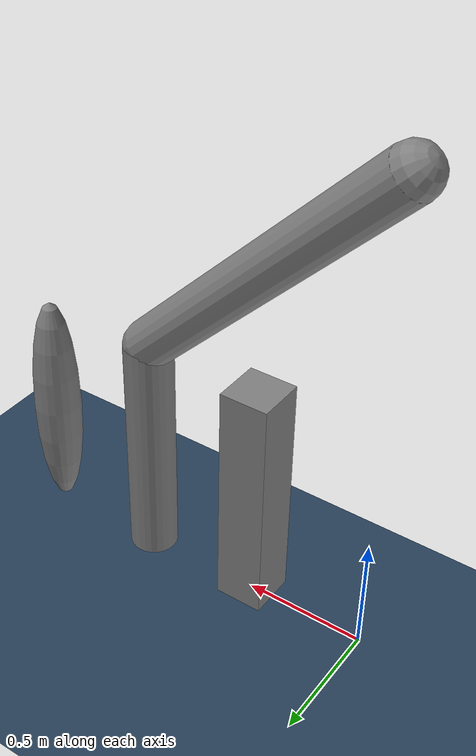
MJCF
<mujoco>
    <asset>
        <texture name="grid" type="2d" builtin="checker" width="512" height="512" rgb1=".1 .2 .3" rgb2=".2 .3 .4"/>
        <material name="grid" texture="grid" texrepeat="1 1" texuniform="true" reflectance=".2"/>
    </asset>

    <worldbody>
        <light pos="0 -1 5" dir="1 1 -10"/>
        <light pos="1.5 -1 5" dir="-1 1 -10"/>

        <camera name="front" pos=".75 -5 1.5"/>

        <body name = "worldplane">
            <geom type="plane" material="grid" size="0 0 .1" pos="0 0 -.1"/>
        </body>

        <body name = "box">
            <joint type = "free" />
            <geom type="box" size="0.1" fromto=".5 0 0 .5 0 1"/>
        </body>

        <body name = "capsule">
            <joint type = "free" />
            <geom type="capsule" size="0.1" fromto="1 0 1 0 0 2"/>
        </body>

        <body name = "cylinder">
            <joint type = "free" />
            <geom type="cylinder" size="0.1" fromto="1 0 0 1 0 1"/>
        </body>

        <body name = "ellipsoid">
            <joint type = "free" />
            <geom type="ellipsoid" size="0.1" fromto="1.5 0 0 1.5 0 1"/>
        </body>

    </worldbody>
</mujoco>
